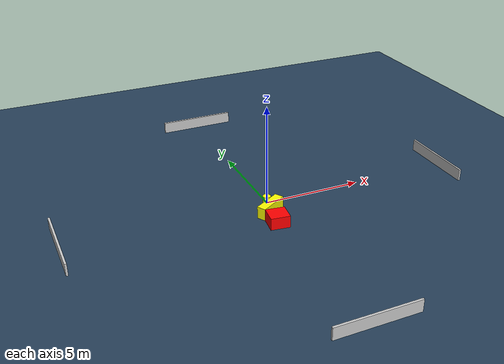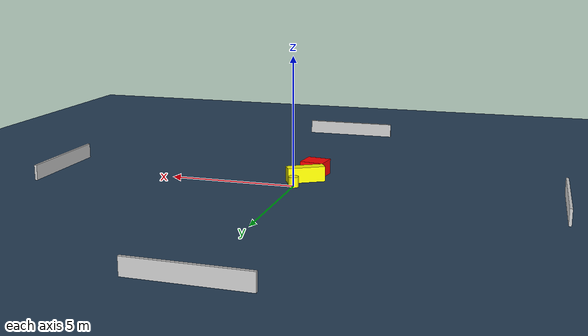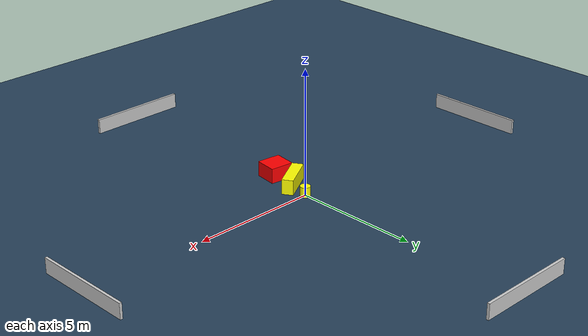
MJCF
<?xml version="1.0" ?>
<mujoco model="generated_environment">
  <option timestep="0.01" integrator="RK4" cone="elliptic"/>
  <default>
    <geom density="1"/>
  </default>
  <asset>
    <texture builtin="gradient" height="3072" name="skybox" rgb1="0.3 0.5 0.7" rgb2="0 0 0" type="skybox" width="512"/>
    <texture builtin="checker" height="300" name="groundplane" rgb1="0.2 0.3 0.4" rgb2="0.1 0.2 0.3" type="2d" width="300"/>
    <material name="groundplane" reflectance="0.2" texrepeat="5 5" texture="groundplane"/>
  </asset>
  <worldbody>
    <light dir="0 0 -1" directional="true" pos="0 0 1.5"/>
    <geom condim="3" friction="0.5 0.005 0.001" material="groundplane" name="floor" pos="0 0 0" size="0 0 0.05" type="plane"/>
    <body name="walls">
      <geom name="wall_1" condim="4" pos="-10.0 0.0 0.3" rgba="0.800000011920929 0.800000011920929 0.800000011920929 1.0" size="0.05 2.0 0.3" type="box"/>
      <geom name="wall_2" condim="4" pos="10.0 0.0 0.3" rgba="0.800000011920929 0.800000011920929 0.800000011920929 1.0" size="0.05 2.0 0.3" type="box"/>
      <geom name="wall_3" condim="4" pos="0.0 -10.0 0.3" rgba="0.800000011920929 0.800000011920929 0.800000011920929 1.0" size="2.0 0.05 0.3" type="box"/>
      <geom name="wall_4" condim="4" pos="0.0 10.0 0.3" rgba="0.800000011920929 0.800000011920929 0.800000011920929 1.0" size="2.0 0.05 0.3" type="box"/>
    </body>
    <body name="robot">
      <joint name="joint_x" type="slide" pos="0 0 0" axis="1 0 0"/>
      <joint name="joint_y" type="slide" pos="0 0 0" axis="0 1 0"/>
      <geom name="robot" type="cylinder" pos="0.0 0.0 0.2" size="0.2 0.2 0.0" mass="5.0" friction="1.0 0.005 0.0001" condim="4" rgba="1.0 1.0 0.0 1.0"/>
    </body>
    <body name="obstacle_1_movable">
      <geom name="obstacle_1_movable" condim="4" pos="-0.224246216106835 -0.887539079237641 0.3" euler="0 0 120.542616012772" friction="0.0 0.005 0.001" rgba="1.0 1.0 0.0 1.0" size="0.2223007856118604 0.7479039509092336 0.3" type="box" mass="0.1"/>
      <joint type="free"/>
    </body>
    <body name="obstacle_2_static">
      <geom name="obstacle_2_static" condim="4" pos="-0.34362822096531137 -1.959191964238886 0.3" euler="0 0 82.79555995298298" friction="0.0 0.005 0.001" rgba="1.0 0.0 0.0 1.0" size="0.44278013584802545 0.47330214359104406 0.3" type="box"/>
    </body>
  </worldbody>
  <actuator>
    <motor name="actuator_x" joint="joint_x" gear="1" ctrlrange="-1 1"/>
    <motor name="actuator_y" joint="joint_y" gear="1" ctrlrange="-1 1"/>
  </actuator>
</mujoco>
